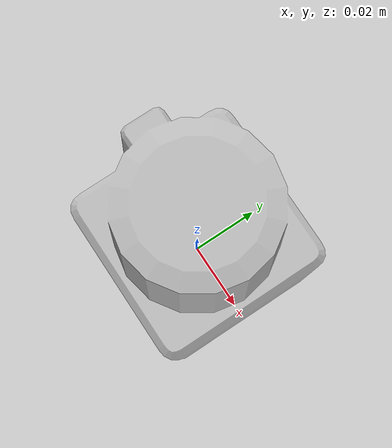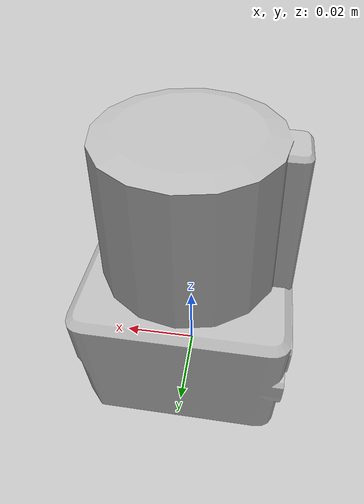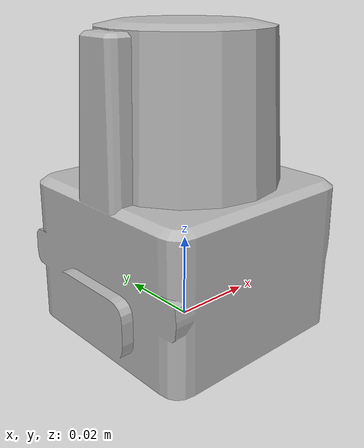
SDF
<?xml version="1.0" ?>
<sdf version="1.6">
  <model name="hokuyo_ust10lx">
    <link name="link">
      <pose>0 0 0 0 0 0</pose>
      <inertial>
        <pose>0 0 0.035003035 0 0 0</pose>
        <mass>0.13</mass>
        <inertia>
          <ixx>8.018737945431742e-05</ixx>
          <ixy>0</ixy>
          <ixz>0</ixz>
          <iyy>8.018737945431742e-05</iyy>
          <iyz>0</iyz>
          <izz>5.418967911032867e-05</izz>
        </inertia>
      </inertial>
      <collision name="collision_base">
        <pose>0 0 0.0175015175 0 0 0</pose>
        <geometry>
          <box>
            <size>0.05001062 0.05001062 0.035003035</size>
          </box>
        </geometry>
      </collision>
      <collision name="collision_top">
        <pose>0 0 0.0525045525 0 0 0</pose>
        <geometry>
          <cylinder>
            <radius>0.02</radius>
            <length>0.035003035</length>
          </cylinder>
        </geometry>
      </collision>
      <visual name="visual">
        <pose>0 0 0 0 0 1.5707</pose>
        <geometry>
          <mesh>
            <uri>model://hokuyo_ust10lx/meshes/hokuyo_ust10lx.dae</uri>
          </mesh>
        </geometry>
      </visual>
      <sensor name="hokuyo_ust10lx" type="gpu_ray">
        <pose>0 0 0.0525045525 0 0 0</pose>
        <ray>
          <scan>
            <horizontal>
              <samples>1080</samples>
              <resolution>1</resolution>
              <min_angle>-2.356195</min_angle>
              <max_angle>2.356195</max_angle>
            </horizontal>
          </scan>
          <range>
            <min>0.060</min>
            <max>10</max>
            <resolution>0.001</resolution>
          </range>
          <noise>
            <type>gaussian</type>
            <mean>0.0</mean>
            <stddev>0.01</stddev>
          </noise>
        </ray>
        <always_on>0</always_on>
        <update_rate>40</update_rate>
        <visualize>false</visualize>
      </sensor>
    </link>
  </model>
</sdf>
